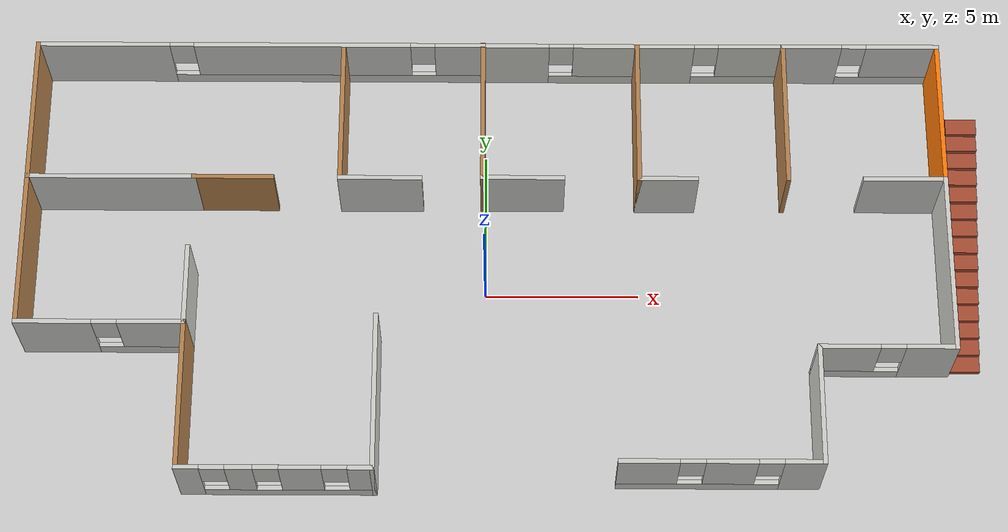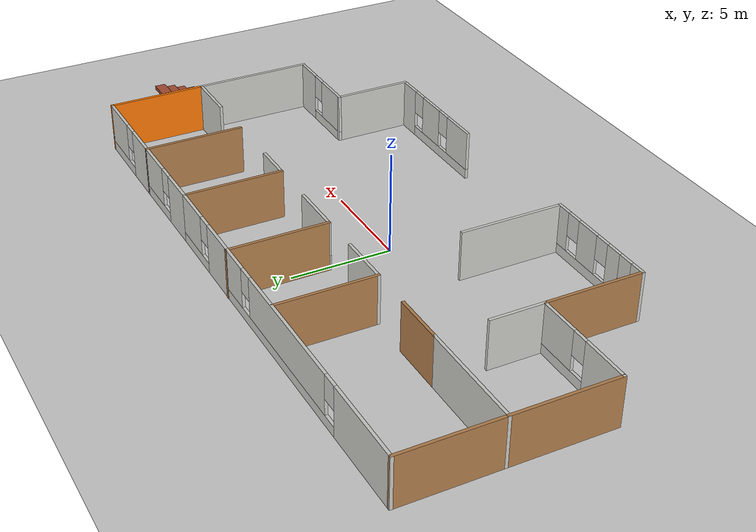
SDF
<sdf version="1.6">
 <world name="default">
  <model name="ground_plane">
   <static>1</static>
   <link name="link">
    <collision name="collision">
     <geometry><plane><normal>0 0 1</normal><size>100 100</size></plane></geometry>
     <surface>
      <contact><collide_bitmask>65535</collide_bitmask></contact>
      <friction><ode><mu>100</mu><mu2>50</mu2></ode></friction>
     </surface>
    </collision>
    <visual name="visual">
     <cast_shadows>0</cast_shadows>
     <geometry><plane><normal>0 0 1</normal><size>100 100</size></plane></geometry>
     <material>
      <script><uri>file://media/materials/scripts/gazebo.material</uri><name>Gazebo/Grey</name></script>
     </material>
    </visual>
   </link>
  </model>
  <model name="Building">
   <pose>0.521906 0.614781 0 0 -0 0</pose>
   <link name="Stairs_0">
    <visual name="Stairs_0_Visual_0">
     <pose>15.0099 -3.00809 0.083333 0 -0 -3.14159</pose>
     <geometry><box><size>1 0.530862 0.166667</size></box></geometry>
     <material>
      <script><uri>file://media/materials/scripts/gazebo.material</uri><name>Gazebo/Bricks</name></script>
      <ambient>0.760784 0.662745 0.627451 1</ambient>
     </material>
     <meta><layer>0</layer></meta>
    </visual>
    <collision name="Stairs_0_Collision_0">
     <geometry><box><size>1 0.530862 0.166667</size></box></geometry>
     <pose>15.0099 -3.00809 0.083333 0 -0 -3.14159</pose>
    </collision>
    <visual name="Stairs_0_Visual_1">
     <pose>15.0099 -2.47723 0.25 0 -0 -3.14159</pose>
     <geometry><box><size>1 0.530862 0.166667</size></box></geometry>
     <material>
      <script><uri>file://media/materials/scripts/gazebo.material</uri><name>Gazebo/Bricks</name></script>
      <ambient>0.760784 0.662745 0.627451 1</ambient>
     </material>
     <meta><layer>0</layer></meta>
    </visual>
    <collision name="Stairs_0_Collision_1">
     <geometry><box><size>1 0.530862 0.166667</size></box></geometry>
     <pose>15.0099 -2.47723 0.25 0 -0 -3.14159</pose>
    </collision>
    <visual name="Stairs_0_Visual_2">
     <pose>15.0099 -1.94637 0.416667 0 -0 -3.14159</pose>
     <geometry><box><size>1 0.530862 0.166667</size></box></geometry>
     <material>
      <script><uri>file://media/materials/scripts/gazebo.material</uri><name>Gazebo/Bricks</name></script>
      <ambient>0.760784 0.662745 0.627451 1</ambient>
     </material>
     <meta><layer>0</layer></meta>
    </visual>
    <collision name="Stairs_0_Collision_2">
     <geometry><box><size>1 0.530862 0.166667</size></box></geometry>
     <pose>15.0099 -1.94637 0.416667 0 -0 -3.14159</pose>
    </collision>
    <visual name="Stairs_0_Visual_3">
     <pose>15.0099 -1.41551 0.583333 0 -0 -3.14159</pose>
     <geometry><box><size>1 0.530862 0.166667</size></box></geometry>
     <material>
      <script><uri>file://media/materials/scripts/gazebo.material</uri><name>Gazebo/Bricks</name></script>
      <ambient>0.760784 0.662745 0.627451 1</ambient>
     </material>
     <meta><layer>0</layer></meta>
    </visual>
    <collision name="Stairs_0_Collision_3">
     <geometry><box><size>1 0.530862 0.166667</size></box></geometry>
     <pose>15.0099 -1.41551 0.583333 0 -0 -3.14159</pose>
    </collision>
    <visual name="Stairs_0_Visual_4">
     <pose>15.0099 -0.884647 0.75 0 -0 -3.14159</pose>
     <geometry><box><size>1 0.530862 0.166667</size></box></geometry>
     <material>
      <script><uri>file://media/materials/scripts/gazebo.material</uri><name>Gazebo/Bricks</name></script>
      <ambient>0.760784 0.662745 0.627451 1</ambient>
     </material>
     <meta><layer>0</layer></meta>
    </visual>
    <collision name="Stairs_0_Collision_4">
     <geometry><box><size>1 0.530862 0.166667</size></box></geometry>
     <pose>15.0099 -0.884647 0.75 0 -0 -3.14159</pose>
    </collision>
    <visual name="Stairs_0_Visual_5">
     <pose>15.0099 -0.353786 0.916667 0 -0 -3.14159</pose>
     <geometry><box><size>1 0.530862 0.166667</size></box></geometry>
     <material>
      <script><uri>file://media/materials/scripts/gazebo.material</uri><name>Gazebo/Bricks</name></script>
      <ambient>0.760784 0.662745 0.627451 1</ambient>
     </material>
     <meta><layer>0</layer></meta>
    </visual>
    <collision name="Stairs_0_Collision_5">
     <geometry><box><size>1 0.530862 0.166667</size></box></geometry>
     <pose>15.0099 -0.353786 0.916667 0 -0 -3.14159</pose>
    </collision>
    <visual name="Stairs_0_Visual_6">
     <pose>15.0099 0.177076 1.08333 0 -0 -3.14159</pose>
     <geometry><box><size>1 0.530862 0.166667</size></box></geometry>
     <material>
      <script><uri>file://media/materials/scripts/gazebo.material</uri><name>Gazebo/Bricks</name></script>
      <ambient>0.760784 0.662745 0.627451 1</ambient>
     </material>
     <meta><layer>0</layer></meta>
    </visual>
    <collision name="Stairs_0_Collision_6">
     <geometry><box><size>1 0.530862 0.166667</size></box></geometry>
     <pose>15.0099 0.177076 1.08333 0 -0 -3.14159</pose>
    </collision>
    <visual name="Stairs_0_Visual_7">
     <pose>15.0099 0.707938 1.25 0 -0 -3.14159</pose>
     <geometry><box><size>1 0.530862 0.166667</size></box></geometry>
     <material>
      <script><uri>file://media/materials/scripts/gazebo.material</uri><name>Gazebo/Bricks</name></script>
      <ambient>0.760784 0.662745 0.627451 1</ambient>
     </material>
     <meta><layer>0</layer></meta>
    </visual>
    <collision name="Stairs_0_Collision_7">
     <geometry><box><size>1 0.530862 0.166667</size></box></geometry>
     <pose>15.0099 0.707938 1.25 0 -0 -3.14159</pose>
    </collision>
    <visual name="Stairs_0_Visual_8">
     <pose>15.0099 1.2388 1.41667 0 -0 -3.14159</pose>
     <geometry><box><size>1 0.530862 0.166667</size></box></geometry>
     <material>
      <script><uri>file://media/materials/scripts/gazebo.material</uri><name>Gazebo/Bricks</name></script>
      <ambient>0.760784 0.662745 0.627451 1</ambient>
     </material>
     <meta><layer>0</layer></meta>
    </visual>
    <collision name="Stairs_0_Collision_8">
     <geometry><box><size>1 0.530862 0.166667</size></box></geometry>
     <pose>15.0099 1.2388 1.41667 0 -0 -3.14159</pose>
    </collision>
    <visual name="Stairs_0_Visual_9">
     <pose>15.0099 1.76966 1.58333 0 -0 -3.14159</pose>
     <geometry><box><size>1 0.530862 0.166667</size></box></geometry>
     <material>
      <script><uri>file://media/materials/scripts/gazebo.material</uri><name>Gazebo/Bricks</name></script>
      <ambient>0.760784 0.662745 0.627451 1</ambient>
     </material>
     <meta><layer>0</layer></meta>
    </visual>
    <collision name="Stairs_0_Collision_9">
     <geometry><box><size>1 0.530862 0.166667</size></box></geometry>
     <pose>15.0099 1.76966 1.58333 0 -0 -3.14159</pose>
    </collision>
    <visual name="Stairs_0_Visual_10">
     <pose>15.0099 2.30052 1.75 0 -0 -3.14159</pose>
     <geometry><box><size>1 0.530862 0.166667</size></box></geometry>
     <material>
      <script><uri>file://media/materials/scripts/gazebo.material</uri><name>Gazebo/Bricks</name></script>
      <ambient>0.760784 0.662745 0.627451 1</ambient>
     </material>
     <meta><layer>0</layer></meta>
    </visual>
    <collision name="Stairs_0_Collision_10">
     <geometry><box><size>1 0.530862 0.166667</size></box></geometry>
     <pose>15.0099 2.30052 1.75 0 -0 -3.14159</pose>
    </collision>
    <visual name="Stairs_0_Visual_11">
     <pose>15.0099 2.83139 1.91667 0 -0 -3.14159</pose>
     <geometry><box><size>1 0.530862 0.166667</size></box></geometry>
     <material>
      <script><uri>file://media/materials/scripts/gazebo.material</uri><name>Gazebo/Bricks</name></script>
      <ambient>0.760784 0.662745 0.627451 1</ambient>
     </material>
     <meta><layer>0</layer></meta>
    </visual>
    <collision name="Stairs_0_Collision_11">
     <geometry><box><size>1 0.530862 0.166667</size></box></geometry>
     <pose>15.0099 2.83139 1.91667 0 -0 -3.14159</pose>
    </collision>
    <visual name="Stairs_0_Visual_12">
     <pose>15.0099 3.36225 2.08333 0 -0 -3.14159</pose>
     <geometry><box><size>1 0.530862 0.166667</size></box></geometry>
     <material>
      <script><uri>file://media/materials/scripts/gazebo.material</uri><name>Gazebo/Bricks</name></script>
      <ambient>0.760784 0.662745 0.627451 1</ambient>
     </material>
     <meta><layer>0</layer></meta>
    </visual>
    <collision name="Stairs_0_Collision_12">
     <geometry><box><size>1 0.530862 0.166667</size></box></geometry>
     <pose>15.0099 3.36225 2.08333 0 -0 -3.14159</pose>
    </collision>
    <visual name="Stairs_0_Visual_13">
     <pose>15.0099 3.89311 2.25 0 -0 -3.14159</pose>
     <geometry><box><size>1 0.530862 0.166667</size></box></geometry>
     <material>
      <script><uri>file://media/materials/scripts/gazebo.material</uri><name>Gazebo/Bricks</name></script>
      <ambient>0.760784 0.662745 0.627451 1</ambient>
     </material>
     <meta><layer>0</layer></meta>
    </visual>
    <collision name="Stairs_0_Collision_13">
     <geometry><box><size>1 0.530862 0.166667</size></box></geometry>
     <pose>15.0099 3.89311 2.25 0 -0 -3.14159</pose>
    </collision>
    <visual name="Stairs_0_Visual_14">
     <pose>15.0099 4.42397 2.41667 0 -0 -3.14159</pose>
     <geometry><box><size>1 0.530862 0.166667</size></box></geometry>
     <material>
      <script><uri>file://media/materials/scripts/gazebo.material</uri><name>Gazebo/Bricks</name></script>
      <ambient>0.760784 0.662745 0.627451 1</ambient>
     </material>
     <meta><layer>0</layer></meta>
    </visual>
    <collision name="Stairs_0_Collision_14">
     <geometry><box><size>1 0.530862 0.166667</size></box></geometry>
     <pose>15.0099 4.42397 2.41667 0 -0 -3.14159</pose>
    </collision>
   </link>
   <link name="Wall_10">
    <collision name="Wall_10_Collision">
     <geometry><box><size>5.01454 0.15 2.5</size></box></geometry>
     <pose>0 0 1.25 0 -0 0</pose>
    </collision>
    <visual name="Wall_10_Visual">
     <pose>0 0 1.25 0 -0 0</pose>
     <geometry><box><size>5.01454 0.15 2.5</size></box></geometry>
     <material>
      <script><uri>file://media/materials/scripts/gazebo.material</uri><name>Gazebo/Wood</name></script>
      <ambient>1 1 1 1</ambient>
     </material>
     <meta><layer>0</layer></meta>
    </visual>
    <pose>-0.636839 4.97487 0 0 -0 -1.56723</pose>
   </link>
   <link name="Wall_12">
    <pose>1.91233 7.37959 0 0 -0 -0.002835</pose>
    <visual name="Wall_12_Visual_0">
     <pose>-1.49665 0 1.25 0 -0 0</pose>
     <geometry><box><size>2.2724 0.15 2.5</size></box></geometry>
     <material>
      <script><uri>file://media/materials/scripts/gazebo.material</uri><name>Gazebo/CeilingTiled</name></script>
      <ambient>0.996078 0.47451 0.0196078 1</ambient>
     </material>
     <meta><layer>0</layer></meta>
    </visual>
    <collision name="Wall_12_Collision_0">
     <geometry><box><size>2.2724 0.15 2.5</size></box></geometry>
     <pose>-1.49665 0 1.25 0 -0 0</pose>
    </collision>
    <visual name="Wall_12_Visual_1">
     <pose>1.1362 0 0.25 0 -0 0</pose>
     <geometry><box><size>2.99329 0.15 0.5</size></box></geometry>
     <material>
      <script><uri>file://media/materials/scripts/gazebo.material</uri><name>Gazebo/CeilingTiled</name></script>
      <ambient>0.996078 0.47451 0.0196078 1</ambient>
     </material>
     <meta><layer>0</layer></meta>
    </visual>
    <collision name="Wall_12_Collision_1">
     <geometry><box><size>2.99329 0.15 0.5</size></box></geometry>
     <pose>1.1362 0 0.25 0 -0 0</pose>
    </collision>
    <visual name="Wall_12_Visual_2">
     <pose>1.5362 0 1.5 0 -0 0</pose>
     <geometry><box><size>2.19329 0.15 2</size></box></geometry>
     <material>
      <script><uri>file://media/materials/scripts/gazebo.material</uri><name>Gazebo/CeilingTiled</name></script>
      <ambient>0.996078 0.47451 0.0196078 1</ambient>
     </material>
     <meta><layer>0</layer></meta>
    </visual>
    <collision name="Wall_12_Collision_2">
     <geometry><box><size>2.19329 0.15 2</size></box></geometry>
     <pose>1.5362 0 1.5 0 -0 0</pose>
    </collision>
    <visual name="Wall_12_Visual_3">
     <pose>0.039557 0 1.9 0 -0 0</pose>
     <geometry><box><size>0.8 0.15 1.2</size></box></geometry>
     <material>
      <script><uri>file://media/materials/scripts/gazebo.material</uri><name>Gazebo/CeilingTiled</name></script>
      <ambient>0.996078 0.47451 0.0196078 1</ambient>
     </material>
     <meta><layer>0</layer></meta>
    </visual>
    <collision name="Wall_12_Collision_3">
     <geometry><box><size>0.8 0.15 1.2</size></box></geometry>
     <pose>0.039557 0 1.9 0 -0 0</pose>
    </collision>
   </link>
   <link name="Wall_15">
    <pose>6.89267 7.38248 0 0 -0 0.004185</pose>
    <visual name="Wall_15_Visual_0">
     <pose>-1.50763 0 1.25 0 -0 0</pose>
     <geometry><box><size>1.97978 0.15 2.5</size></box></geometry>
     <material>
      <script><uri>file://media/materials/scripts/gazebo.material</uri><name>Gazebo/CeilingTiled</name></script>
      <ambient>0.435294 0.796078 0.67451 1</ambient>
     </material>
     <meta><layer>0</layer></meta>
    </visual>
    <collision name="Wall_15_Collision_0">
     <geometry><box><size>1.97978 0.15 2.5</size></box></geometry>
     <pose>-1.50763 0 1.25 0 -0 0</pose>
    </collision>
    <visual name="Wall_15_Visual_1">
     <pose>0.989888 0 0.25 0 -0 0</pose>
     <geometry><box><size>3.01526 0.15 0.5</size></box></geometry>
     <material>
      <script><uri>file://media/materials/scripts/gazebo.material</uri><name>Gazebo/CeilingTiled</name></script>
      <ambient>0.435294 0.796078 0.67451 1</ambient>
     </material>
     <meta><layer>0</layer></meta>
    </visual>
    <collision name="Wall_15_Collision_1">
     <geometry><box><size>3.01526 0.15 0.5</size></box></geometry>
     <pose>0.989888 0 0.25 0 -0 0</pose>
    </collision>
    <visual name="Wall_15_Visual_2">
     <pose>1.38989 0 1.5 0 -0 0</pose>
     <geometry><box><size>2.21526 0.15 2</size></box></geometry>
     <material>
      <script><uri>file://media/materials/scripts/gazebo.material</uri><name>Gazebo/CeilingTiled</name></script>
      <ambient>0.435294 0.796078 0.67451 1</ambient>
     </material>
     <meta><layer>0</layer></meta>
    </visual>
    <collision name="Wall_15_Collision_2">
     <geometry><box><size>2.21526 0.15 2</size></box></geometry>
     <pose>1.38989 0 1.5 0 -0 0</pose>
    </collision>
    <visual name="Wall_15_Visual_3">
     <pose>-0.117741 0 1.9 0 -0 0</pose>
     <geometry><box><size>0.8 0.15 1.2</size></box></geometry>
     <material>
      <script><uri>file://media/materials/scripts/gazebo.material</uri><name>Gazebo/CeilingTiled</name></script>
      <ambient>0.435294 0.796078 0.67451 1</ambient>
     </material>
     <meta><layer>0</layer></meta>
    </visual>
    <collision name="Wall_15_Collision_3">
     <geometry><box><size>0.8 0.15 1.2</size></box></geometry>
     <pose>-0.117741 0 1.9 0 -0 0</pose>
    </collision>
   </link>
   <link name="Wall_16">
    <collision name="Wall_16_Collision">
     <geometry><box><size>5 0.15 2.5</size></box></geometry>
     <pose>0 0 1.25 0 -0 0</pose>
    </collision>
    <visual name="Wall_16_Visual">
     <pose>0 0 1.25 0 -0 0</pose>
     <geometry><box><size>5 0.15 2.5</size></box></geometry>
     <material>
      <script><uri>file://media/materials/scripts/gazebo.material</uri><name>Gazebo/Wood</name></script>
      <ambient>1 1 1 1</ambient>
     </material>
     <meta><layer>0</layer></meta>
    </visual>
    <pose>9.31516 4.96762 0 0 -0 -1.5708</pose>
   </link>
   <link name="Wall_18">
    <collision name="Wall_18_Collision">
     <geometry><box><size>5.57093 0.15 2.5</size></box></geometry>
     <pose>0 0 1.25 0 -0 0</pose>
    </collision>
    <visual name="Wall_18_Visual">
     <pose>0 0 1.25 0 -0 0</pose>
     <geometry><box><size>5.57093 0.15 2.5</size></box></geometry>
     <material>
      <script><uri>file://media/materials/scripts/gazebo.material</uri><name>Gazebo/CeilingTiled</name></script>
      <ambient>0.435294 0.796078 0.67451 1</ambient>
     </material>
     <meta><layer>0</layer></meta>
    </visual>
    <pose>-12.7244 2.54262 0 0 -0 3.14159</pose>
   </link>
   <link name="Wall_20">
    <collision name="Wall_20_Collision">
     <geometry><box><size>5.25 0.15 2.5</size></box></geometry>
     <pose>0 0 1.25 0 -0 0</pose>
    </collision>
    <visual name="Wall_20_Visual">
     <pose>0 0 1.25 0 -0 0</pose>
     <geometry><box><size>5.25 0.15 2.5</size></box></geometry>
     <material>
      <script><uri>file://media/materials/scripts/gazebo.material</uri><name>Gazebo/Wood</name></script>
      <ambient>1 1 1 1</ambient>
     </material>
     <meta><layer>0</layer></meta>
    </visual>
    <pose>-15.4348 -0.007385 0 0 -0 -1.5708</pose>
   </link>
   <link name="Wall_21">
    <pose>-12.7598 -2.55739 0 0 -0 0</pose>
    <visual name="Wall_21_Visual_0">
     <pose>-1.50027 0 1.25 0 -0 0</pose>
     <geometry><box><size>2.49946 0.15 2.5</size></box></geometry>
     <material>
      <script><uri>file://media/materials/scripts/gazebo.material</uri><name>Gazebo/CeilingTiled</name></script>
      <ambient>0.921569 0.807843 0.615686 1</ambient>
     </material>
     <meta><layer>0</layer></meta>
    </visual>
    <collision name="Wall_21_Collision_0">
     <geometry><box><size>2.49946 0.15 2.5</size></box></geometry>
     <pose>-1.50027 0 1.25 0 -0 0</pose>
    </collision>
    <visual name="Wall_21_Visual_1">
     <pose>1.24973 0 0.25 0 -0 0</pose>
     <geometry><box><size>3.00054 0.15 0.5</size></box></geometry>
     <material>
      <script><uri>file://media/materials/scripts/gazebo.material</uri><name>Gazebo/CeilingTiled</name></script>
      <ambient>0.921569 0.807843 0.615686 1</ambient>
     </material>
     <meta><layer>0</layer></meta>
    </visual>
    <collision name="Wall_21_Collision_1">
     <geometry><box><size>3.00054 0.15 0.5</size></box></geometry>
     <pose>1.24973 0 0.25 0 -0 0</pose>
    </collision>
    <visual name="Wall_21_Visual_2">
     <pose>1.64973 0 1.5 0 -0 0</pose>
     <geometry><box><size>2.20054 0.15 2</size></box></geometry>
     <material>
      <script><uri>file://media/materials/scripts/gazebo.material</uri><name>Gazebo/CeilingTiled</name></script>
      <ambient>0.921569 0.807843 0.615686 1</ambient>
     </material>
     <meta><layer>0</layer></meta>
    </visual>
    <collision name="Wall_21_Collision_2">
     <geometry><box><size>2.20054 0.15 2</size></box></geometry>
     <pose>1.64973 0 1.5 0 -0 0</pose>
    </collision>
    <visual name="Wall_21_Visual_3">
     <pose>0.149458 0 1.9 0 -0 0</pose>
     <geometry><box><size>0.8 0.15 1.2</size></box></geometry>
     <material>
      <script><uri>file://media/materials/scripts/gazebo.material</uri><name>Gazebo/CeilingTiled</name></script>
      <ambient>0.921569 0.807843 0.615686 1</ambient>
     </material>
     <meta><layer>0</layer></meta>
    </visual>
    <collision name="Wall_21_Collision_3">
     <geometry><box><size>0.8 0.15 1.2</size></box></geometry>
     <pose>0.149458 0 1.9 0 -0 0</pose>
    </collision>
   </link>
   <link name="Wall_22">
    <collision name="Wall_22_Collision">
     <geometry><box><size>5 0.15 2.5</size></box></geometry>
     <pose>0 0 1.25 0 -0 0</pose>
    </collision>
    <visual name="Wall_22_Visual">
     <pose>0 0 1.25 0 -0 0</pose>
     <geometry><box><size>5 0.15 2.5</size></box></geometry>
     <material>
      <script><uri>file://media/materials/scripts/gazebo.material</uri><name>Gazebo/Wood</name></script>
      <ambient>1 1 1 1</ambient>
     </material>
     <meta><layer>0</layer></meta>
    </visual>
    <pose>-10.0848 -4.98238 0 0 -0 -1.5708</pose>
   </link>
   <link name="Wall_23">
    <pose>-7.03484 -7.40738 0 0 -0 0</pose>
    <visual name="Wall_23_Visual_0">
     <pose>-2.72612 0 1.25 0 -0 0</pose>
     <geometry><box><size>0.797767 0.15 2.5</size></box></geometry>
     <material>
      <script><uri>file://media/materials/scripts/gazebo.material</uri><name>Gazebo/CeilingTiled</name></script>
      <ambient>0.921569 0.807843 0.615686 1</ambient>
     </material>
     <meta><layer>0</layer></meta>
    </visual>
    <collision name="Wall_23_Collision_0">
     <geometry><box><size>0.797767 0.15 2.5</size></box></geometry>
     <pose>-2.72612 0 1.25 0 -0 0</pose>
    </collision>
    <visual name="Wall_23_Visual_1">
     <pose>0.398883 0 0.25 0 -0 0</pose>
     <geometry><box><size>5.45223 0.15 0.5</size></box></geometry>
     <material>
      <script><uri>file://media/materials/scripts/gazebo.material</uri><name>Gazebo/CeilingTiled</name></script>
      <ambient>0.921569 0.807843 0.615686 1</ambient>
     </material>
     <meta><layer>0</layer></meta>
    </visual>
    <collision name="Wall_23_Collision_1">
     <geometry><box><size>5.45223 0.15 0.5</size></box></geometry>
     <pose>0.398883 0 0.25 0 -0 0</pose>
    </collision>
    <visual name="Wall_23_Visual_2">
     <pose>-1.09245 0 1.5 0 -0 0</pose>
     <geometry><box><size>0.869566 0.15 2</size></box></geometry>
     <material>
      <script><uri>file://media/materials/scripts/gazebo.material</uri><name>Gazebo/CeilingTiled</name></script>
      <ambient>0.921569 0.807843 0.615686 1</ambient>
     </material>
     <meta><layer>0</layer></meta>
    </visual>
    <collision name="Wall_23_Collision_2">
     <geometry><box><size>0.869566 0.15 2</size></box></geometry>
     <pose>-1.09245 0 1.5 0 -0 0</pose>
    </collision>
    <visual name="Wall_23_Visual_3">
     <pose>0.808999 0 1.5 0 -0 0</pose>
     <geometry><box><size>1.33333 0.15 2</size></box></geometry>
     <material>
      <script><uri>file://media/materials/scripts/gazebo.material</uri><name>Gazebo/CeilingTiled</name></script>
      <ambient>0.921569 0.807843 0.615686 1</ambient>
     </material>
     <meta><layer>0</layer></meta>
    </visual>
    <collision name="Wall_23_Collision_3">
     <geometry><box><size>1.33333 0.15 2</size></box></geometry>
     <pose>0.808999 0 1.5 0 -0 0</pose>
    </collision>
    <visual name="Wall_23_Visual_4">
     <pose>2.70033 0 1.5 0 -0 0</pose>
     <geometry><box><size>0.849334 0.15 2</size></box></geometry>
     <material>
      <script><uri>file://media/materials/scripts/gazebo.material</uri><name>Gazebo/CeilingTiled</name></script>
      <ambient>0.921569 0.807843 0.615686 1</ambient>
     </material>
     <meta><layer>0</layer></meta>
    </visual>
    <collision name="Wall_23_Collision_4">
     <geometry><box><size>0.849334 0.15 2</size></box></geometry>
     <pose>2.70033 0 1.5 0 -0 0</pose>
    </collision>
    <visual name="Wall_23_Visual_5">
     <pose>-1.92723 0 1.9 0 -0 0</pose>
     <geometry><box><size>0.8 0.15 1.2</size></box></geometry>
     <material>
      <script><uri>file://media/materials/scripts/gazebo.material</uri><name>Gazebo/CeilingTiled</name></script>
      <ambient>0.921569 0.807843 0.615686 1</ambient>
     </material>
     <meta><layer>0</layer></meta>
    </visual>
    <collision name="Wall_23_Collision_5">
     <geometry><box><size>0.8 0.15 1.2</size></box></geometry>
     <pose>-1.92723 0 1.9 0 -0 0</pose>
    </collision>
    <visual name="Wall_23_Visual_6">
     <pose>-0.257668 0 1.9 0 -0 0</pose>
     <geometry><box><size>0.8 0.15 1.2</size></box></geometry>
     <material>
      <script><uri>file://media/materials/scripts/gazebo.material</uri><name>Gazebo/CeilingTiled</name></script>
      <ambient>0.921569 0.807843 0.615686 1</ambient>
     </material>
     <meta><layer>0</layer></meta>
    </visual>
    <collision name="Wall_23_Collision_6">
     <geometry><box><size>0.8 0.15 1.2</size></box></geometry>
     <pose>-0.257668 0 1.9 0 -0 0</pose>
    </collision>
    <visual name="Wall_23_Visual_7">
     <pose>1.87567 0 1.9 0 -0 0</pose>
     <geometry><box><size>0.8 0.15 1.2</size></box></geometry>
     <material>
      <script><uri>file://media/materials/scripts/gazebo.material</uri><name>Gazebo/CeilingTiled</name></script>
      <ambient>0.921569 0.807843 0.615686 1</ambient>
     </material>
     <meta><layer>0</layer></meta>
    </visual>
    <collision name="Wall_23_Collision_7">
     <geometry><box><size>0.8 0.15 1.2</size></box></geometry>
     <pose>1.87567 0 1.9 0 -0 0</pose>
    </collision>
   </link>
   <link name="Wall_24">
    <collision name="Wall_24_Collision">
     <geometry><box><size>5.25 0.15 2.5</size></box></geometry>
     <pose>0 0 1.25 0 -0 0</pose>
    </collision>
    <visual name="Wall_24_Visual">
     <pose>0 0 1.25 0 -0 0</pose>
     <geometry><box><size>5.25 0.15 2.5</size></box></geometry>
     <material>
      <script><uri>file://media/materials/scripts/gazebo.material</uri><name>Gazebo/CeilingTiled</name></script>
      <ambient>1 0.764706 0.305882 1</ambient>
     </material>
     <meta><layer>0</layer></meta>
    </visual>
    <pose>-3.98484 -4.85738 0 0 -0 1.5708</pose>
   </link>
   <link name="Wall_28">
    <collision name="Wall_28_Collision">
     <geometry><box><size>6 0.15 2.5</size></box></geometry>
     <pose>0 0 1.25 0 -0 0</pose>
    </collision>
    <visual name="Wall_28_Visual">
     <pose>0 0 1.25 0 -0 0</pose>
     <geometry><box><size>6 0.15 2.5</size></box></geometry>
     <material>
      <script><uri>file://media/materials/scripts/gazebo.material</uri><name>Gazebo/CeilingTiled</name></script>
      <ambient>0.435294 0.796078 0.67451 1</ambient>
     </material>
     <meta><layer>0</layer></meta>
    </visual>
    <pose>14.4152 -0.382385 0 0 -0 -1.5708</pose>
   </link>
   <link name="Wall_29">
    <pose>12.2402 -3.30739 0 0 -0 3.14159</pose>
    <visual name="Wall_29_Visual_0">
     <pose>-1.40601 0 1.25 0 -0 0</pose>
     <geometry><box><size>1.68798 0.15 2.5</size></box></geometry>
     <material>
      <script><uri>file://media/materials/scripts/gazebo.material</uri><name>Gazebo/CeilingTiled</name></script>
      <ambient>0.921569 0.807843 0.615686 1</ambient>
     </material>
     <meta><layer>0</layer></meta>
    </visual>
    <collision name="Wall_29_Collision_0">
     <geometry><box><size>1.68798 0.15 2.5</size></box></geometry>
     <pose>-1.40601 0 1.25 0 -0 0</pose>
    </collision>
    <visual name="Wall_29_Visual_1">
     <pose>0.843991 0 0.25 0 -0 0</pose>
     <geometry><box><size>2.81202 0.15 0.5</size></box></geometry>
     <material>
      <script><uri>file://media/materials/scripts/gazebo.material</uri><name>Gazebo/CeilingTiled</name></script>
      <ambient>0.921569 0.807843 0.615686 1</ambient>
     </material>
     <meta><layer>0</layer></meta>
    </visual>
    <collision name="Wall_29_Collision_1">
     <geometry><box><size>2.81202 0.15 0.5</size></box></geometry>
     <pose>0.843991 0 0.25 0 -0 0</pose>
    </collision>
    <visual name="Wall_29_Visual_2">
     <pose>1.24399 0 1.5 0 -0 0</pose>
     <geometry><box><size>2.01202 0.15 2</size></box></geometry>
     <material>
      <script><uri>file://media/materials/scripts/gazebo.material</uri><name>Gazebo/CeilingTiled</name></script>
      <ambient>0.921569 0.807843 0.615686 1</ambient>
     </material>
     <meta><layer>0</layer></meta>
    </visual>
    <collision name="Wall_29_Collision_2">
     <geometry><box><size>2.01202 0.15 2</size></box></geometry>
     <pose>1.24399 0 1.5 0 -0 0</pose>
    </collision>
    <visual name="Wall_29_Visual_3">
     <pose>-0.162018 0 1.9 0 -0 0</pose>
     <geometry><box><size>0.8 0.15 1.2</size></box></geometry>
     <material>
      <script><uri>file://media/materials/scripts/gazebo.material</uri><name>Gazebo/CeilingTiled</name></script>
      <ambient>0.921569 0.807843 0.615686 1</ambient>
     </material>
     <meta><layer>0</layer></meta>
    </visual>
    <collision name="Wall_29_Collision_3">
     <geometry><box><size>0.8 0.15 1.2</size></box></geometry>
     <pose>-0.162018 0 1.9 0 -0 0</pose>
    </collision>
   </link>
   <link name="Wall_30">
    <collision name="Wall_30_Collision">
     <geometry><box><size>4 0.15 2.5</size></box></geometry>
     <pose>0 0 1.25 0 -0 0</pose>
    </collision>
    <visual name="Wall_30_Visual">
     <pose>0 0 1.25 0 -0 0</pose>
     <geometry><box><size>4 0.15 2.5</size></box></geometry>
     <material>
      <script><uri>file://media/materials/scripts/gazebo.material</uri><name>Gazebo/CeilingTiled</name></script>
      <ambient>1 0.764706 0.305882 1</ambient>
     </material>
     <meta><layer>0</layer></meta>
    </visual>
    <pose>10.0652 -5.23238 0 0 -0 -1.5708</pose>
   </link>
   <link name="Wall_31">
    <pose>6.89016 -7.15738 0 0 -0 3.14159</pose>
    <visual name="Wall_31_Visual_0">
     <pose>-2.58681 0 1.25 0 -0 0</pose>
     <geometry><box><size>1.32639 0.15 2.5</size></box></geometry>
     <material>
      <script><uri>file://media/materials/scripts/gazebo.material</uri><name>Gazebo/CeilingTiled</name></script>
      <ambient>0.921569 0.807843 0.615686 1</ambient>
     </material>
     <meta><layer>0</layer></meta>
    </visual>
    <collision name="Wall_31_Collision_0">
     <geometry><box><size>1.32639 0.15 2.5</size></box></geometry>
     <pose>-2.58681 0 1.25 0 -0 0</pose>
    </collision>
    <visual name="Wall_31_Visual_1">
     <pose>0.663194 0 0.25 0 -0 0</pose>
     <geometry><box><size>5.17361 0.15 0.5</size></box></geometry>
     <material>
      <script><uri>file://media/materials/scripts/gazebo.material</uri><name>Gazebo/CeilingTiled</name></script>
      <ambient>0.921569 0.807843 0.615686 1</ambient>
     </material>
     <meta><layer>0</layer></meta>
    </visual>
    <collision name="Wall_31_Collision_1">
     <geometry><box><size>5.17361 0.15 0.5</size></box></geometry>
     <pose>0.663194 0 0.25 0 -0 0</pose>
    </collision>
    <visual name="Wall_31_Visual_2">
     <pose>-0.302357 0 1.5 0 -0 0</pose>
     <geometry><box><size>1.64251 0.15 2</size></box></geometry>
     <material>
      <script><uri>file://media/materials/scripts/gazebo.material</uri><name>Gazebo/CeilingTiled</name></script>
      <ambient>0.921569 0.807843 0.615686 1</ambient>
     </material>
     <meta><layer>0</layer></meta>
    </visual>
    <collision name="Wall_31_Collision_2">
     <geometry><box><size>1.64251 0.15 2</size></box></geometry>
     <pose>-0.302357 0 1.5 0 -0 0</pose>
    </collision>
    <visual name="Wall_31_Visual_3">
     <pose>2.28445 0 1.5 0 -0 0</pose>
     <geometry><box><size>1.9311 0.15 2</size></box></geometry>
     <material>
      <script><uri>file://media/materials/scripts/gazebo.material</uri><name>Gazebo/CeilingTiled</name></script>
      <ambient>0.921569 0.807843 0.615686 1</ambient>
     </material>
     <meta><layer>0</layer></meta>
    </visual>
    <collision name="Wall_31_Collision_3">
     <geometry><box><size>1.9311 0.15 2</size></box></geometry>
     <pose>2.28445 0 1.5 0 -0 0</pose>
    </collision>
    <visual name="Wall_31_Visual_4">
     <pose>-1.52361 0 1.9 0 -0 0</pose>
     <geometry><box><size>0.8 0.15 1.2</size></box></geometry>
     <material>
      <script><uri>file://media/materials/scripts/gazebo.material</uri><name>Gazebo/CeilingTiled</name></script>
      <ambient>0.921569 0.807843 0.615686 1</ambient>
     </material>
     <meta><layer>0</layer></meta>
    </visual>
    <collision name="Wall_31_Collision_4">
     <geometry><box><size>0.8 0.15 1.2</size></box></geometry>
     <pose>-1.52361 0 1.9 0 -0 0</pose>
    </collision>
    <visual name="Wall_31_Visual_5">
     <pose>0.9189 0 1.9 0 -0 0</pose>
     <geometry><box><size>0.8 0.15 1.2</size></box></geometry>
     <material>
      <script><uri>file://media/materials/scripts/gazebo.material</uri><name>Gazebo/CeilingTiled</name></script>
      <ambient>0.921569 0.807843 0.615686 1</ambient>
     </material>
     <meta><layer>0</layer></meta>
    </visual>
    <collision name="Wall_31_Collision_5">
     <geometry><box><size>0.8 0.15 1.2</size></box></geometry>
     <pose>0.9189 0 1.9 0 -0 0</pose>
    </collision>
   </link>
   <link name="Wall_35">
    <collision name="Wall_35_Collision">
     <geometry><box><size>2.67907 0.15 2.5</size></box></geometry>
     <pose>0 0 1.25 0 -0 0</pose>
    </collision>
    <visual name="Wall_35_Visual">
     <pose>0 0 1.25 0 -0 0</pose>
     <geometry><box><size>2.67907 0.15 2.5</size></box></geometry>
     <material>
      <script><uri>file://media/materials/scripts/gazebo.material</uri><name>Gazebo/Wood</name></script>
      <ambient>1 1 1 1</ambient>
     </material>
     <meta><layer>0</layer></meta>
    </visual>
    <pose>-8.74937 2.54262 0 0 -0 0</pose>
   </link>
   <link name="Wall_37">
    <collision name="Wall_37_Collision">
     <geometry><box><size>2.75 0.15 2.5</size></box></geometry>
     <pose>0 0 1.25 0 -0 0</pose>
    </collision>
    <visual name="Wall_37_Visual">
     <pose>0 0 1.25 0 -0 0</pose>
     <geometry><box><size>2.75 0.15 2.5</size></box></geometry>
     <material>
      <script><uri>file://media/materials/scripts/gazebo.material</uri><name>Gazebo/CeilingTiled</name></script>
      <ambient>0.996078 0.47451 0.0196078 1</ambient>
     </material>
     <meta><layer>0</layer></meta>
    </visual>
    <pose>-3.97539 2.52234 0 0 -0 0</pose>
   </link>
   <link name="Wall_39">
    <collision name="Wall_39_Collision">
     <geometry><box><size>2.75 0.15 2.5</size></box></geometry>
     <pose>0 0 1.25 0 -0 0</pose>
    </collision>
    <visual name="Wall_39_Visual">
     <pose>0 0 1.25 0 -0 0</pose>
     <geometry><box><size>2.75 0.15 2.5</size></box></geometry>
     <material>
      <script><uri>file://media/materials/scripts/gazebo.material</uri><name>Gazebo/CeilingTiled</name></script>
      <ambient>0.996078 0.47451 0.0196078 1</ambient>
     </material>
     <meta><layer>0</layer></meta>
    </visual>
    <pose>0.671822 2.54262 0 0 -0 0</pose>
   </link>
   <link name="Wall_41">
    <collision name="Wall_41_Collision">
     <geometry><box><size>5 0.15 2.5</size></box></geometry>
     <pose>0 0 1.25 0 -0 0</pose>
    </collision>
    <visual name="Wall_41_Visual">
     <pose>0 0 1.25 0 -0 0</pose>
     <geometry><box><size>5 0.15 2.5</size></box></geometry>
     <material>
      <script><uri>file://media/materials/scripts/gazebo.material</uri><name>Gazebo/Wood</name></script>
      <ambient>1 1 1 1</ambient>
     </material>
     <meta><layer>0</layer></meta>
    </visual>
    <pose>-15.4348 4.96762 0 0 -0 1.5708</pose>
   </link>
   <link name="Wall_42">
    <pose>-8.04017 7.38973 0 0 -0 -0.00039</pose>
    <visual name="Wall_42_Visual_0">
     <pose>-5.24521 0 1.25 0 -0 0</pose>
     <geometry><box><size>4.44893 0.15 2.5</size></box></geometry>
     <material>
      <script><uri>file://media/materials/scripts/gazebo.material</uri><name>Gazebo/CeilingTiled</name></script>
      <ambient>0.996078 0.47451 0.0196078 1</ambient>
     </material>
     <meta><layer>0</layer></meta>
    </visual>
    <collision name="Wall_42_Collision_0">
     <geometry><box><size>4.44893 0.15 2.5</size></box></geometry>
     <pose>-5.24521 0 1.25 0 -0 0</pose>
    </collision>
    <visual name="Wall_42_Visual_1">
     <pose>2.22446 0 0.25 0 -0 0</pose>
     <geometry><box><size>10.4904 0.15 0.5</size></box></geometry>
     <material>
      <script><uri>file://media/materials/scripts/gazebo.material</uri><name>Gazebo/CeilingTiled</name></script>
      <ambient>0.996078 0.47451 0.0196078 1</ambient>
     </material>
     <meta><layer>0</layer></meta>
    </visual>
    <collision name="Wall_42_Collision_1">
     <geometry><box><size>10.4904 0.15 0.5</size></box></geometry>
     <pose>2.22446 0 0.25 0 -0 0</pose>
    </collision>
    <visual name="Wall_42_Visual_2">
     <pose>1.38113 0 1.5 0 -0 0</pose>
     <geometry><box><size>7.20375 0.15 2</size></box></geometry>
     <material>
      <script><uri>file://media/materials/scripts/gazebo.material</uri><name>Gazebo/CeilingTiled</name></script>
      <ambient>0.996078 0.47451 0.0196078 1</ambient>
     </material>
     <meta><layer>0</layer></meta>
    </visual>
    <collision name="Wall_42_Collision_2">
     <geometry><box><size>7.20375 0.15 2</size></box></geometry>
     <pose>1.38113 0 1.5 0 -0 0</pose>
    </collision>
    <visual name="Wall_42_Visual_3">
     <pose>6.62634 0 1.5 0 -0 0</pose>
     <geometry><box><size>1.68666 0.15 2</size></box></geometry>
     <material>
      <script><uri>file://media/materials/scripts/gazebo.material</uri><name>Gazebo/CeilingTiled</name></script>
      <ambient>0.996078 0.47451 0.0196078 1</ambient>
     </material>
     <meta><layer>0</layer></meta>
    </visual>
    <collision name="Wall_42_Collision_3">
     <geometry><box><size>1.68666 0.15 2</size></box></geometry>
     <pose>6.62634 0 1.5 0 -0 0</pose>
    </collision>
    <visual name="Wall_42_Visual_4">
     <pose>-2.62074 0 1.9 0 -0 0</pose>
     <geometry><box><size>0.8 0.15 1.2</size></box></geometry>
     <material>
      <script><uri>file://media/materials/scripts/gazebo.material</uri><name>Gazebo/CeilingTiled</name></script>
      <ambient>0.996078 0.47451 0.0196078 1</ambient>
     </material>
     <meta><layer>0</layer></meta>
    </visual>
    <collision name="Wall_42_Collision_4">
     <geometry><box><size>0.8 0.15 1.2</size></box></geometry>
     <pose>-2.62074 0 1.9 0 -0 0</pose>
    </collision>
    <visual name="Wall_42_Visual_5">
     <pose>5.38301 0 1.9 0 -0 0</pose>
     <geometry><box><size>0.8 0.15 1.2</size></box></geometry>
     <material>
      <script><uri>file://media/materials/scripts/gazebo.material</uri><name>Gazebo/CeilingTiled</name></script>
      <ambient>0.996078 0.47451 0.0196078 1</ambient>
     </material>
     <meta><layer>0</layer></meta>
    </visual>
    <collision name="Wall_42_Collision_5">
     <geometry><box><size>0.8 0.15 1.2</size></box></geometry>
     <pose>5.38301 0 1.9 0 -0 0</pose>
    </collision>
   </link>
   <link name="Wall_44">
    <collision name="Wall_44_Collision">
     <geometry><box><size>5 0.15 2.5</size></box></geometry>
     <pose>0 0 1.25 0 -0 0</pose>
    </collision>
    <visual name="Wall_44_Visual">
     <pose>0 0 1.25 0 -0 0</pose>
     <geometry><box><size>5 0.15 2.5</size></box></geometry>
     <material>
      <script><uri>file://media/materials/scripts/gazebo.material</uri><name>Gazebo/Wood</name></script>
      <ambient>1 1 1 1</ambient>
     </material>
     <meta><layer>0</layer></meta>
    </visual>
    <pose>4.47017 4.94734 0 0 -0 -1.5708</pose>
   </link>
   <link name="Wall_45">
    <collision name="Wall_45_Collision">
     <geometry><box><size>2 0.15 2.5</size></box></geometry>
     <pose>0 0 1.25 0 -0 0</pose>
    </collision>
    <visual name="Wall_45_Visual">
     <pose>0 0 1.25 0 -0 0</pose>
     <geometry><box><size>2 0.15 2.5</size></box></geometry>
     <material>
      <script><uri>file://media/materials/scripts/gazebo.material</uri><name>Gazebo/CeilingTiled</name></script>
      <ambient>0.996078 0.47451 0.0196078 1</ambient>
     </material>
     <meta><layer>0</layer></meta>
    </visual>
    <pose>5.39517 2.52234 0 0 -0 0</pose>
   </link>
   <link name="Wall_47">
    <collision name="Wall_47_Collision">
     <geometry><box><size>5 0.15 2.5</size></box></geometry>
     <pose>0 0 1.25 0 -0 0</pose>
    </collision>
    <visual name="Wall_47_Visual">
     <pose>0 0 1.25 0 -0 0</pose>
     <geometry><box><size>5 0.15 2.5</size></box></geometry>
     <material>
      <script><uri>file://media/materials/scripts/gazebo.material</uri><name>Gazebo/Wood</name></script>
      <ambient>1 1 1 1</ambient>
     </material>
     <meta><layer>0</layer></meta>
    </visual>
    <pose>-5.27539 4.94734 0 0 -0 1.5708</pose>
   </link>
   <link name="Wall_49">
    <pose>11.8652 7.39262 0 0 -0 0</pose>
    <visual name="Wall_49_Visual_0">
     <pose>-1.60924 0 1.25 0 -0 0</pose>
     <geometry><box><size>2.03152 0.15 2.5</size></box></geometry>
     <material>
      <script><uri>file://media/materials/scripts/gazebo.material</uri><name>Gazebo/CeilingTiled</name></script>
      <ambient>0.996078 0.47451 0.0196078 1</ambient>
     </material>
     <meta><layer>0</layer></meta>
    </visual>
    <collision name="Wall_49_Collision_0">
     <geometry><box><size>2.03152 0.15 2.5</size></box></geometry>
     <pose>-1.60924 0 1.25 0 -0 0</pose>
    </collision>
    <visual name="Wall_49_Visual_1">
     <pose>1.01576 0 0.25 0 -0 0</pose>
     <geometry><box><size>3.21848 0.15 0.5</size></box></geometry>
     <material>
      <script><uri>file://media/materials/scripts/gazebo.material</uri><name>Gazebo/CeilingTiled</name></script>
      <ambient>0.996078 0.47451 0.0196078 1</ambient>
     </material>
     <meta><layer>0</layer></meta>
    </visual>
    <collision name="Wall_49_Collision_1">
     <geometry><box><size>3.21848 0.15 0.5</size></box></geometry>
     <pose>1.01576 0 0.25 0 -0 0</pose>
    </collision>
    <visual name="Wall_49_Visual_2">
     <pose>1.41576 0 1.5 0 -0 0</pose>
     <geometry><box><size>2.41848 0.15 2</size></box></geometry>
     <material>
      <script><uri>file://media/materials/scripts/gazebo.material</uri><name>Gazebo/CeilingTiled</name></script>
      <ambient>0.996078 0.47451 0.0196078 1</ambient>
     </material>
     <meta><layer>0</layer></meta>
    </visual>
    <collision name="Wall_49_Collision_2">
     <geometry><box><size>2.41848 0.15 2</size></box></geometry>
     <pose>1.41576 0 1.5 0 -0 0</pose>
    </collision>
    <visual name="Wall_49_Visual_3">
     <pose>-0.19348 0 1.9 0 -0 0</pose>
     <geometry><box><size>0.8 0.15 1.2</size></box></geometry>
     <material>
      <script><uri>file://media/materials/scripts/gazebo.material</uri><name>Gazebo/CeilingTiled</name></script>
      <ambient>0.996078 0.47451 0.0196078 1</ambient>
     </material>
     <meta><layer>0</layer></meta>
    </visual>
    <collision name="Wall_49_Collision_3">
     <geometry><box><size>0.8 0.15 1.2</size></box></geometry>
     <pose>-0.19348 0 1.9 0 -0 0</pose>
    </collision>
   </link>
   <link name="Wall_50">
    <collision name="Wall_50_Collision">
     <geometry><box><size>5 0.15 2.5</size></box></geometry>
     <pose>0 0 1.25 0 -0 0</pose>
    </collision>
    <visual name="Wall_50_Visual">
     <pose>0 0 1.25 0 -0 0</pose>
     <geometry><box><size>5 0.15 2.5</size></box></geometry>
     <material>
      <script><uri>file://media/materials/scripts/gazebo.material</uri><name>Gazebo/Grey</name></script>
      <ambient>0.996078 0.47451 0.0196078 1</ambient>
     </material>
     <meta><layer>0</layer></meta>
    </visual>
    <pose>14.4152 4.96762 0 0 -0 -1.5708</pose>
   </link>
   <link name="Wall_52">
    <collision name="Wall_52_Collision">
     <geometry><box><size>2.75 0.15 2.5</size></box></geometry>
     <pose>0 0 1.25 0 -0 0</pose>
    </collision>
    <visual name="Wall_52_Visual">
     <pose>0 0 1.25 0 -0 0</pose>
     <geometry><box><size>2.75 0.15 2.5</size></box></geometry>
     <material>
      <script><uri>file://media/materials/scripts/gazebo.material</uri><name>Gazebo/CeilingTiled</name></script>
      <ambient>0.435294 0.796078 0.67451 1</ambient>
     </material>
     <meta><layer>0</layer></meta>
    </visual>
    <pose>13.1152 2.54262 0 0 -0 3.14159</pose>
   </link>
   <link name="Wall_54">
    <collision name="Wall_54_Collision">
     <geometry><box><size>2.75 0.15 2.5</size></box></geometry>
     <pose>0 0 1.25 0 -0 0</pose>
    </collision>
    <visual name="Wall_54_Visual">
     <pose>0 0 1.25 0 -0 0</pose>
     <geometry><box><size>2.75 0.15 2.5</size></box></geometry>
     <material>
      <script><uri>file://media/materials/scripts/gazebo.material</uri><name>Gazebo/CeilingTiled</name></script>
      <ambient>1 0.764706 0.305882 1</ambient>
     </material>
     <meta><layer>0</layer></meta>
    </visual>
    <pose>-10.0848 -1.25738 0 0 -0 1.5708</pose>
   </link>
   <static>1</static>
  </model>
 </world>
</sdf>
